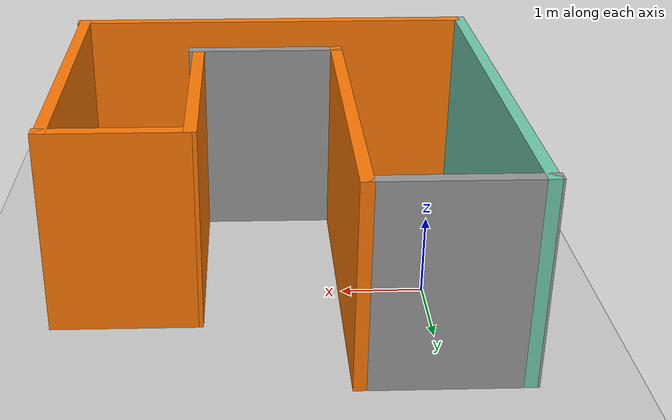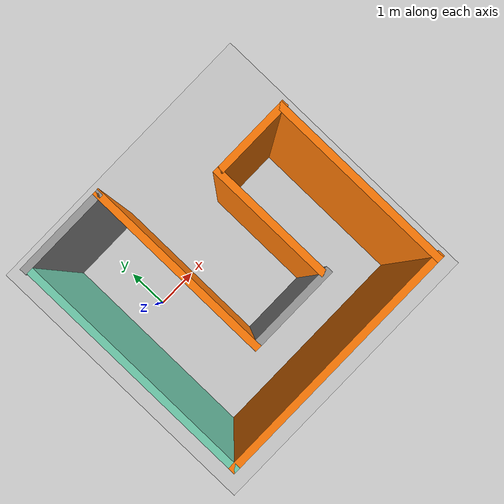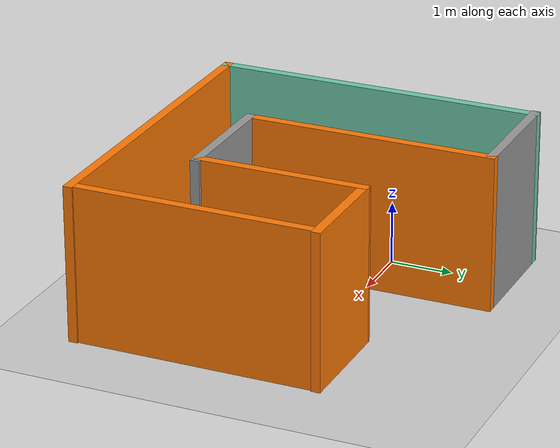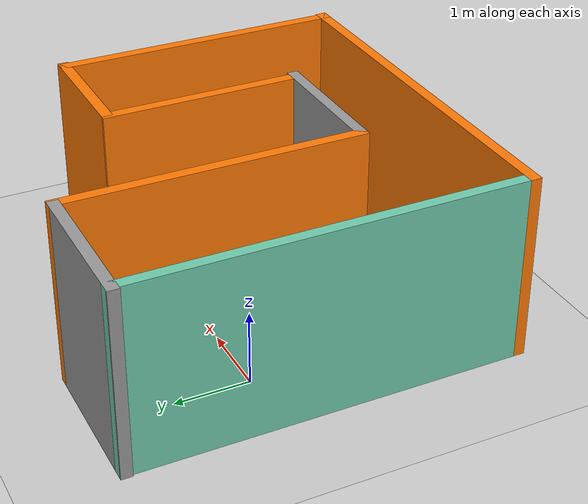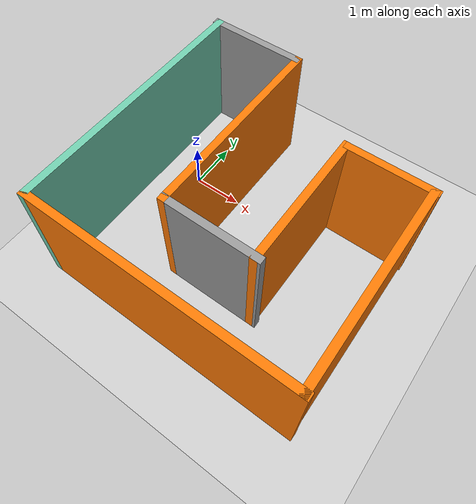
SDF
<sdf version="1.6">
 <world name="default">
  <light name="sun" type="directional">
   <pose>0 0 10 0 -0 0</pose>
   <diffuse>0.8 0.8 0.8 1</diffuse>
   <specular>0.1 0.1 0.1 1</specular>
   <attenuation>
    <range>1000</range>
    <constant>0.9</constant>
    <linear>0.01</linear>
    <quadratic>0.001</quadratic>
   </attenuation>
   <direction>-0.5 0.5 -1</direction>
  </light>
  <model name="ground_plane">
   <static>1</static>
   <link name="link">
    <collision name="collision">
     <geometry><plane><normal>0 0 1</normal><size>100 100</size></plane></geometry>
     <surface><friction><ode><mu>100</mu><mu2>50</mu2></ode></friction></surface>
    </collision>
    <visual name="visual">
     <cast_shadows>0</cast_shadows>
     <geometry><plane><normal>0 0 1</normal><size>100 100</size></plane></geometry>
     <material>
      <script><uri>file://media/materials/scripts/gazebo.material</uri><name>Gazebo/Grey</name></script>
     </material>
    </visual>
   </link>
  </model>
  <gravity>0 0 -9.8</gravity>
  <magnetic_field>6e-06 2.3e-05 -4.2e-05</magnetic_field>
  <atmosphere type="adiabatic"/>
  <physics name="default_physics" default="0" type="ode">
   <max_step_size>0.001</max_step_size>
   <real_time_factor>1</real_time_factor>
   <real_time_update_rate>1000</real_time_update_rate>
  </physics>
  <scene><ambient>0.4 0.4 0.4 1</ambient><background>0.7 0.7 0.7 1</background><shadows>1</shadows></scene>
  <spherical_coordinates>
   <surface_model>EARTH_WGS84</surface_model>
   <latitude_deg>0</latitude_deg>
   <longitude_deg>0</longitude_deg>
   <elevation>0</elevation>
   <heading_deg>0</heading_deg>
  </spherical_coordinates>
  <model name="wolrd1">
   <pose>1.75505 -0.637288 0 0 -0 0</pose>
   <link name="Wall_0">
    <collision name="Wall_0_Collision">
     <geometry><box><size>5.33548 0.15 2.5</size></box></geometry>
     <pose>0 0 1.25 0 -0 0</pose>
    </collision>
    <visual name="Wall_0_Visual">
     <pose>0 0 1.25 0 -0 0</pose>
     <geometry><box><size>5.33548 0.15 2.5</size></box></geometry>
     <material>
      <script><uri>file://media/materials/scripts/gazebo.material</uri><name>Gazebo/Grey</name></script>
      <ambient>0.435294 0.796078 0.67451 1</ambient>
     </material>
    </visual>
    <pose>-2.6368 -5e-06 0 0 -0 1.5708</pose>
   </link>
   <link name="Wall_1">
    <collision name="Wall_1_Collision">
     <geometry><box><size>2 0.15 2.5</size></box></geometry>
     <pose>0 0 1.25 0 -0 0</pose>
    </collision>
    <visual name="Wall_1_Visual">
     <pose>0 0 1.25 0 -0 0</pose>
     <geometry><box><size>2 0.15 2.5</size></box></geometry>
     <material>
      <script><uri>file://media/materials/scripts/gazebo.material</uri><name>Gazebo/Grey</name></script>
      <ambient>1 1 1 1</ambient>
     </material>
    </visual>
    <pose>-1.7384 2.5927 0 0 -0 0</pose>
   </link>
   <link name="Wall_2">
    <collision name="Wall_2_Collision">
     <geometry><box><size>4.0855 0.15 2.5</size></box></geometry>
     <pose>0 0 1.25 0 -0 0</pose>
    </collision>
    <visual name="Wall_2_Visual">
     <pose>0 0 1.25 0 -0 0</pose>
     <geometry><box><size>4.0855 0.15 2.5</size></box></geometry>
     <material>
      <script><uri>file://media/materials/scripts/gazebo.material</uri><name>Gazebo/Grey</name></script>
      <ambient>0.996078 0.47451 0.0196078 1</ambient>
     </material>
    </visual>
    <pose>-0.786805 0.624995 0 0 0 -1.5708</pose>
   </link>
   <link name="Wall_3">
    <collision name="Wall_3_Collision">
     <geometry><box><size>1.99481 0.15 2.5</size></box></geometry>
     <pose>0 0 1.25 0 -0 0</pose>
    </collision>
    <visual name="Wall_3_Visual">
     <pose>0 0 1.25 0 -0 0</pose>
     <geometry><box><size>1.99481 0.15 2.5</size></box></geometry>
     <material>
      <script><uri>file://media/materials/scripts/gazebo.material</uri><name>Gazebo/Grey</name></script>
      <ambient>1 1 1 1</ambient>
     </material>
    </visual>
    <pose>0.135598 -1.34271 0 0 -0 0</pose>
   </link>
   <link name="Wall_4">
    <collision name="Wall_4_Collision">
     <geometry><box><size>2.80341 0.15 2.5</size></box></geometry>
     <pose>0 0 1.25 0 -0 0</pose>
    </collision>
    <visual name="Wall_4_Visual">
     <pose>0 0 1.25 0 -0 0</pose>
     <geometry><box><size>2.80341 0.15 2.5</size></box></geometry>
     <material>
      <script><uri>file://media/materials/scripts/gazebo.material</uri><name>Gazebo/Grey</name></script>
      <ambient>0.996078 0.47451 0.0196078 1</ambient>
     </material>
    </visual>
    <pose>1.0048 -0.016007 0 0 -0 1.5708</pose>
   </link>
   <link name="Wall_5">
    <collision name="Wall_5_Collision">
     <geometry><box><size>1.7554 0.15 2.5</size></box></geometry>
     <pose>0 0 1.25 0 -0 0</pose>
    </collision>
    <visual name="Wall_5_Visual">
     <pose>0 0 1.25 0 -0 0</pose>
     <geometry><box><size>1.7554 0.15 2.5</size></box></geometry>
     <material>
      <script><uri>file://media/materials/scripts/gazebo.material</uri><name>Gazebo/Grey</name></script>
      <ambient>0.996078 0.47451 0.0196078 1</ambient>
     </material>
    </visual>
    <pose>1.8607 1.3107 0 0 -0 0</pose>
   </link>
   <link name="Wall_6">
    <collision name="Wall_6_Collision">
     <geometry><box><size>4.05341 0.15 2.5</size></box></geometry>
     <pose>0 0 1.25 0 -0 0</pose>
    </collision>
    <visual name="Wall_6_Visual">
     <pose>0 0 1.25 0 -0 0</pose>
     <geometry><box><size>4.05341 0.15 2.5</size></box></geometry>
     <material>
      <script><uri>file://media/materials/scripts/gazebo.material</uri><name>Gazebo/Grey</name></script>
      <ambient>0.996078 0.47451 0.0196078 1</ambient>
     </material>
    </visual>
    <pose>2.6368 -0.641007 0 0 0 -1.5708</pose>
   </link>
   <link name="Wall_7">
    <collision name="Wall_7_Collision">
     <geometry><box><size>5.45021 0.15 2.5</size></box></geometry>
     <pose>0 0 1.25 0 -0 0</pose>
    </collision>
    <visual name="Wall_7_Visual">
     <pose>0 0 1.25 0 -0 0</pose>
     <geometry><box><size>5.45021 0.15 2.5</size></box></geometry>
     <material>
      <script><uri>file://media/materials/scripts/gazebo.material</uri><name>Gazebo/Grey</name></script>
      <ambient>0.996078 0.47451 0.0196078 1</ambient>
     </material>
    </visual>
    <pose>0.0133 -2.59271 0 0 -0 3.14159</pose>
   </link>
   <static>1</static>
  </model>
 </world>
</sdf>
